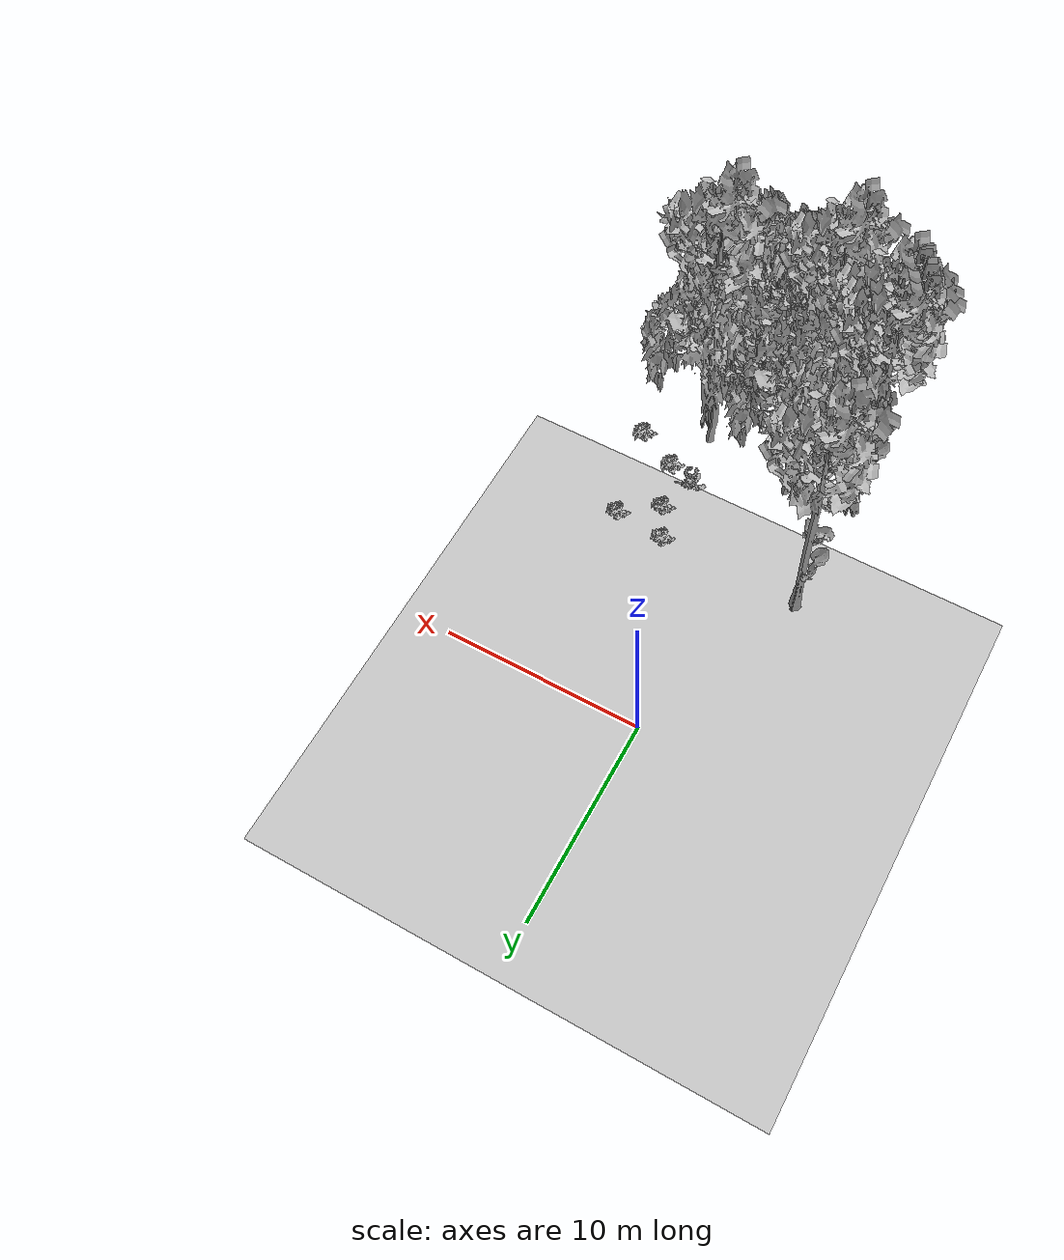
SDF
<sdf version="1.7">
 <world name="default">
  <model name="ground_plane">
   <static>1</static>
   <link name="link">
    <collision name="collision">
     <pose>-50 0 0 0 -0 0</pose>
     <geometry><plane><normal>0 0 1</normal><size>80 80</size></plane></geometry>
     <surface><contact><ode><min_depth>0.01</min_depth><max_vel>0</max_vel></ode></contact></surface>
    </collision>
    <visual name="grass">
     <cast_shadows>0</cast_shadows>
     <geometry>
      <mesh>
       <scale>0.46714285714285714 0.46714285714285714 0.1</scale>
       <uri>file://grass_plane/meshes/grass_plane.dae</uri>
      </mesh>
     </geometry>
    </visual>
   </link>
  </model>
  <model name="Tree 66">
   <static>1</static>
   <pose>-0.5796061830649677 -14.479180370355547 0 1.57079 -0 0</pose>
   <link name="link">
    <collision name="collision">
     <geometry><mesh><scale>3.5 5 3.5</scale><uri>model://tree_2/meshes/tree_2.obj</uri></mesh></geometry>
    </collision>
    <visual name="visual">
     <geometry><mesh><scale>3.5 5 3.5</scale><uri>model://tree_2/meshes/tree_2.obj</uri></mesh></geometry>
    </visual>
   </link>
  </model>
  <model name="Tree 288">
   <static>1</static>
   <pose>-0.1182451813251788 -18.076066769982447 0 1.57079 -0 0</pose>
   <link name="link">
    <collision name="collision">
     <geometry><mesh><scale>3.5 5 3.5</scale><uri>model://tree_9/meshes/tree_9.obj</uri></mesh></geometry>
    </collision>
    <visual name="visual">
     <geometry><mesh><scale>3.5 5 3.5</scale><uri>model://tree_9/meshes/tree_9.obj</uri></mesh></geometry>
    </visual>
   </link>
  </model>
  <model name="Tree 361">
   <static>1</static>
   <pose>-3.402382979740459 -15.877434461144581 0 1.57079 -0 0</pose>
   <link name="link">
    <collision name="collision">
     <geometry><mesh><scale>3.5 5 3.5</scale><uri>model://tree_9/meshes/tree_9.obj</uri></mesh></geometry>
    </collision>
    <visual name="visual">
     <geometry><mesh><scale>3.5 5 3.5</scale><uri>model://tree_9/meshes/tree_9.obj</uri></mesh></geometry>
    </visual>
   </link>
  </model>
  <model name="Tree 428">
   <static>1</static>
   <pose>-3.6952857852275827 -15.368165709479769 0 1.57079 -0 0</pose>
   <link name="link">
    <collision name="collision">
     <geometry><mesh><scale>3.5 5 3.5</scale><uri>model://tree_9/meshes/tree_9.obj</uri></mesh></geometry>
    </collision>
    <visual name="visual">
     <geometry><mesh><scale>3.5 5 3.5</scale><uri>model://tree_9/meshes/tree_9.obj</uri></mesh></geometry>
    </visual>
   </link>
  </model>
  <model name="Tree 445">
   <static>1</static>
   <pose>4.094624961769824 -15.47157215002877 0 1.57079 -0 0</pose>
   <link name="link">
    <collision name="collision">
     <geometry><mesh><scale>3.5 5 3.5</scale><uri>model://tree_2/meshes/tree_2.obj</uri></mesh></geometry>
    </collision>
    <visual name="visual">
     <geometry><mesh><scale>3.5 5 3.5</scale><uri>model://tree_2/meshes/tree_2.obj</uri></mesh></geometry>
    </visual>
   </link>
  </model>
  <model name="Tree 476">
   <static>1</static>
   <pose>-3.5846107727323897 -8.906530529551535 0 1.57079 -0 0</pose>
   <link name="link">
    <collision name="collision">
     <geometry><mesh><scale>3.5 5 3.5</scale><uri>model://tree_9/meshes/tree_9.obj</uri></mesh></geometry>
    </collision>
    <visual name="visual">
     <geometry><mesh><scale>3.5 5 3.5</scale><uri>model://tree_9/meshes/tree_9.obj</uri></mesh></geometry>
    </visual>
   </link>
  </model>
  <model name="Tree 507">
   <static>1</static>
   <pose>-2.9178164117088627 -16.454561514763917 0 1.57079 -0 0</pose>
   <link name="link">
    <collision name="collision">
     <geometry><mesh><scale>3.5 5 3.5</scale><uri>model://tree_9/meshes/tree_9.obj</uri></mesh></geometry>
    </collision>
    <visual name="visual">
     <geometry><mesh><scale>3.5 5 3.5</scale><uri>model://tree_9/meshes/tree_9.obj</uri></mesh></geometry>
    </visual>
   </link>
  </model>
  <model name="Tree 551">
   <static>1</static>
   <pose>4.902384437783198 -16.676957482074464 0 1.57079 -0 0</pose>
   <link name="link">
    <collision name="collision">
     <geometry><mesh><scale>3.5 5 3.5</scale><uri>model://tree_9/meshes/tree_9.obj</uri></mesh></geometry>
    </collision>
    <visual name="visual">
     <geometry><mesh><scale>3.5 5 3.5</scale><uri>model://tree_9/meshes/tree_9.obj</uri></mesh></geometry>
    </visual>
   </link>
  </model>
  <model name="Tree 571">
   <static>1</static>
   <pose>1.669918956811884 -19.598195647539498 0 1.57079 -0 0</pose>
   <link name="link">
    <collision name="collision">
     <geometry><mesh><scale>3.5 5 3.5</scale><uri>model://tree_2/meshes/tree_2.obj</uri></mesh></geometry>
    </collision>
    <visual name="visual">
     <geometry><mesh><scale>3.5 5 3.5</scale><uri>model://tree_2/meshes/tree_2.obj</uri></mesh></geometry>
    </visual>
   </link>
  </model>
  <model name="Tree 588">
   <static>1</static>
   <pose>0.7917181651858485 -18.791935042933908 0 1.57079 -0 0</pose>
   <link name="link">
    <collision name="collision">
     <geometry><mesh><scale>3.5 5 3.5</scale><uri>model://tree_2/meshes/tree_2.obj</uri></mesh></geometry>
    </collision>
    <visual name="visual">
     <geometry><mesh><scale>3.5 5 3.5</scale><uri>model://tree_2/meshes/tree_2.obj</uri></mesh></geometry>
    </visual>
   </link>
  </model>
  <model name="Tree 591">
   <static>1</static>
   <pose>4.114994050828599 -19.763944977809665 0 1.57079 -0 0</pose>
   <link name="link">
    <collision name="collision">
     <geometry><mesh><scale>3.5 5 3.5</scale><uri>model://tree_2/meshes/tree_2.obj</uri></mesh></geometry>
    </collision>
    <visual name="visual">
     <geometry><mesh><scale>3.5 5 3.5</scale><uri>model://tree_2/meshes/tree_2.obj</uri></mesh></geometry>
    </visual>
   </link>
  </model>
  <model name="Bush 49">
   <static>1</static>
   <pose>6.281235096161801 -9.542271041854107 0 1.57079 -0 0</pose>
   <link name="link">
    <collision name="collision">
     <geometry><mesh><scale>2 2 2</scale><uri>model://bush_2/meshes/bush_2.obj</uri></mesh></geometry>
     <surface><contact><collide_without_contact>false</collide_without_contact></contact></surface>
    </collision>
    <visual name="visual">
     <geometry><mesh><scale>2 2 2</scale><uri>model://bush_2/meshes/bush_2.obj</uri></mesh></geometry>
    </visual>
   </link>
  </model>
  <model name="Bush 87">
   <static>1</static>
   <pose>-2.816264460485769 -12.816682147288738 0 1.57079 -0 0</pose>
   <link name="link">
    <collision name="collision">
     <geometry><mesh><scale>2 2 2</scale><uri>model://bush_2/meshes/bush_2.obj</uri></mesh></geometry>
     <surface><contact><collide_without_contact>false</collide_without_contact></contact></surface>
    </collision>
    <visual name="visual">
     <geometry><mesh><scale>2 2 2</scale><uri>model://bush_2/meshes/bush_2.obj</uri></mesh></geometry>
    </visual>
   </link>
  </model>
  <model name="Bush 118">
   <static>1</static>
   <pose>5.196985186010728 -13.234582917742177 0 1.57079 -0 0</pose>
   <link name="link">
    <collision name="collision">
     <geometry><mesh><scale>2 2 2</scale><uri>model://bush_2/meshes/bush_2.obj</uri></mesh></geometry>
     <surface><contact><collide_without_contact>false</collide_without_contact></contact></surface>
    </collision>
    <visual name="visual">
     <geometry><mesh><scale>2 2 2</scale><uri>model://bush_2/meshes/bush_2.obj</uri></mesh></geometry>
    </visual>
   </link>
  </model>
  <model name="Bush 247">
   <static>1</static>
   <pose>4.821014924019416 -18.117404504915697 0 1.57079 -0 0</pose>
   <link name="link">
    <collision name="collision">
     <geometry><mesh><scale>2 2 2</scale><uri>model://bush_0/meshes/bush_0.obj</uri></mesh></geometry>
     <surface><contact><collide_without_contact>false</collide_without_contact></contact></surface>
    </collision>
    <visual name="visual">
     <geometry><mesh><scale>2 2 2</scale><uri>model://bush_0/meshes/bush_0.obj</uri></mesh></geometry>
    </visual>
   </link>
  </model>
  <model name="Bush 304">
   <static>1</static>
   <pose>-3.4666343080620905 -16.270467313763444 0 1.57079 -0 0</pose>
   <link name="link">
    <collision name="collision">
     <geometry><mesh><scale>2 2 2</scale><uri>model://bush_2/meshes/bush_2.obj</uri></mesh></geometry>
     <surface><contact><collide_without_contact>false</collide_without_contact></contact></surface>
    </collision>
    <visual name="visual">
     <geometry><mesh><scale>2 2 2</scale><uri>model://bush_2/meshes/bush_2.obj</uri></mesh></geometry>
    </visual>
   </link>
  </model>
  <model name="Bush 316">
   <static>1</static>
   <pose>3.711894181673749 -12.463229894644865 0 1.57079 -0 0</pose>
   <link name="link">
    <collision name="collision">
     <geometry><mesh><scale>2 2 2</scale><uri>model://bush_4/meshes/bush_4.obj</uri></mesh></geometry>
     <surface><contact><collide_without_contact>false</collide_without_contact></contact></surface>
    </collision>
    <visual name="visual">
     <geometry><mesh><scale>2 2 2</scale><uri>model://bush_4/meshes/bush_4.obj</uri></mesh></geometry>
    </visual>
   </link>
  </model>
  <model name="Bush 334">
   <static>1</static>
   <pose>-2.783686710025677 -14.43734322835974 0 1.57079 -0 0</pose>
   <link name="link">
    <collision name="collision">
     <geometry><mesh><scale>2 2 2</scale><uri>model://bush_0/meshes/bush_0.obj</uri></mesh></geometry>
     <surface><contact><collide_without_contact>false</collide_without_contact></contact></surface>
    </collision>
    <visual name="visual">
     <geometry><mesh><scale>2 2 2</scale><uri>model://bush_0/meshes/bush_0.obj</uri></mesh></geometry>
    </visual>
   </link>
  </model>
  <model name="Bush 362">
   <static>1</static>
   <pose>7.310327477133541 -14.28698360841804 0 1.57079 -0 0</pose>
   <link name="link">
    <collision name="collision">
     <geometry><mesh><scale>2 2 2</scale><uri>model://bush_2/meshes/bush_2.obj</uri></mesh></geometry>
     <surface><contact><collide_without_contact>false</collide_without_contact></contact></surface>
    </collision>
    <visual name="visual">
     <geometry><mesh><scale>2 2 2</scale><uri>model://bush_2/meshes/bush_2.obj</uri></mesh></geometry>
    </visual>
   </link>
  </model>
  <model name="Bush 555">
   <static>1</static>
   <pose>-0.9320882495751093 -15.477993560660153 0 1.57079 -0 0</pose>
   <link name="link">
    <collision name="collision">
     <geometry><mesh><scale>2 2 2</scale><uri>model://bush_2/meshes/bush_2.obj</uri></mesh></geometry>
     <surface><contact><collide_without_contact>false</collide_without_contact></contact></surface>
    </collision>
    <visual name="visual">
     <geometry><mesh><scale>2 2 2</scale><uri>model://bush_2/meshes/bush_2.obj</uri></mesh></geometry>
    </visual>
   </link>
  </model>
  <model name="Bush 594">
   <static>1</static>
   <pose>4.46680250070952 -10.844618634181337 0 1.57079 -0 0</pose>
   <link name="link">
    <collision name="collision">
     <geometry><mesh><scale>2 2 2</scale><uri>model://bush_2/meshes/bush_2.obj</uri></mesh></geometry>
     <surface><contact><collide_without_contact>false</collide_without_contact></contact></surface>
    </collision>
    <visual name="visual">
     <geometry><mesh><scale>2 2 2</scale><uri>model://bush_2/meshes/bush_2.obj</uri></mesh></geometry>
    </visual>
   </link>
  </model>
  <model name="Bush 633">
   <static>1</static>
   <pose>-0.04224726269053747 -17.617087909673977 0 1.57079 -0 0</pose>
   <link name="link">
    <collision name="collision">
     <geometry><mesh><scale>2 2 2</scale><uri>model://bush_4/meshes/bush_4.obj</uri></mesh></geometry>
     <surface><contact><collide_without_contact>false</collide_without_contact></contact></surface>
    </collision>
    <visual name="visual">
     <geometry><mesh><scale>2 2 2</scale><uri>model://bush_4/meshes/bush_4.obj</uri></mesh></geometry>
    </visual>
   </link>
  </model>
  <model name="Bush 638">
   <static>1</static>
   <pose>3.6630224614638465 -9.271258648604963 0 1.57079 -0 0</pose>
   <link name="link">
    <collision name="collision">
     <geometry><mesh><scale>2 2 2</scale><uri>model://bush_2/meshes/bush_2.obj</uri></mesh></geometry>
     <surface><contact><collide_without_contact>false</collide_without_contact></contact></surface>
    </collision>
    <visual name="visual">
     <geometry><mesh><scale>2 2 2</scale><uri>model://bush_2/meshes/bush_2.obj</uri></mesh></geometry>
    </visual>
   </link>
  </model>
 </world>
</sdf>
